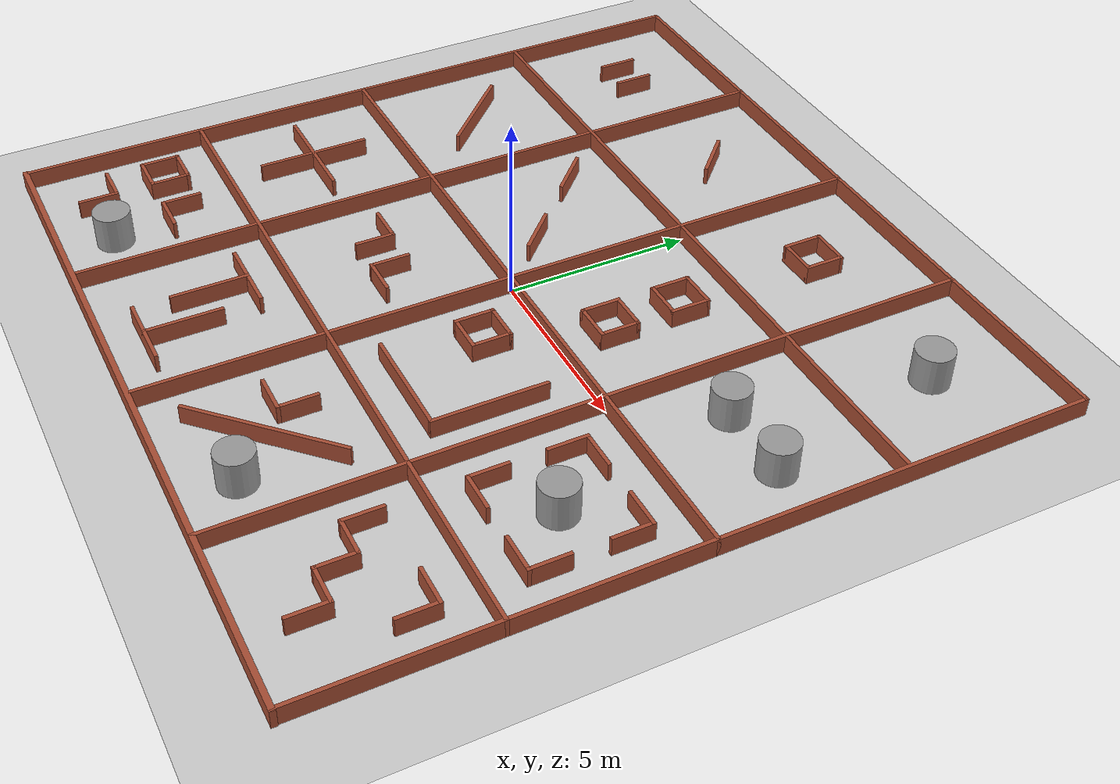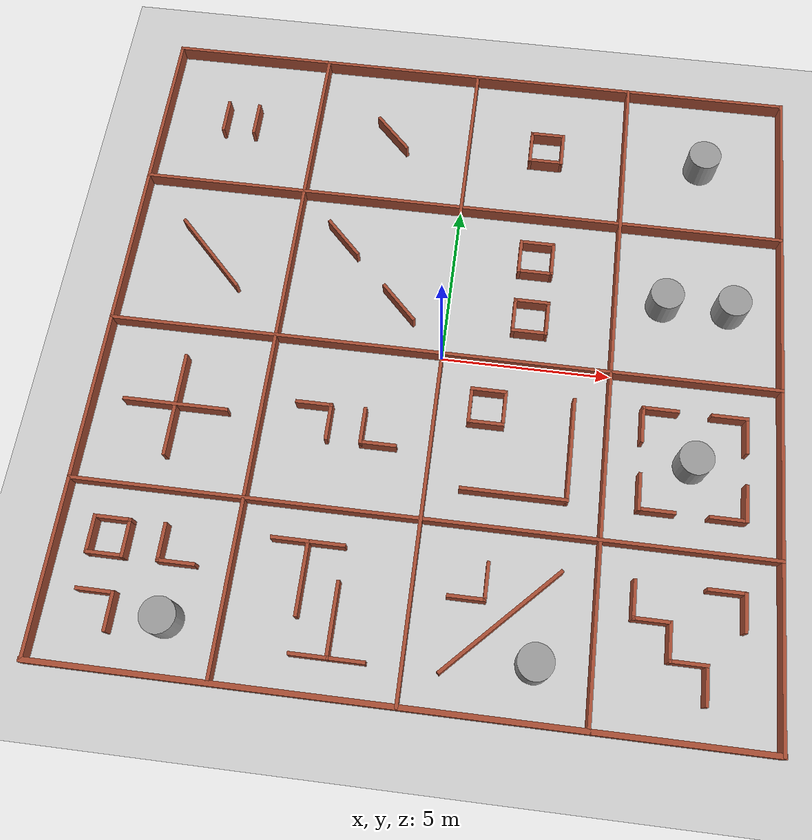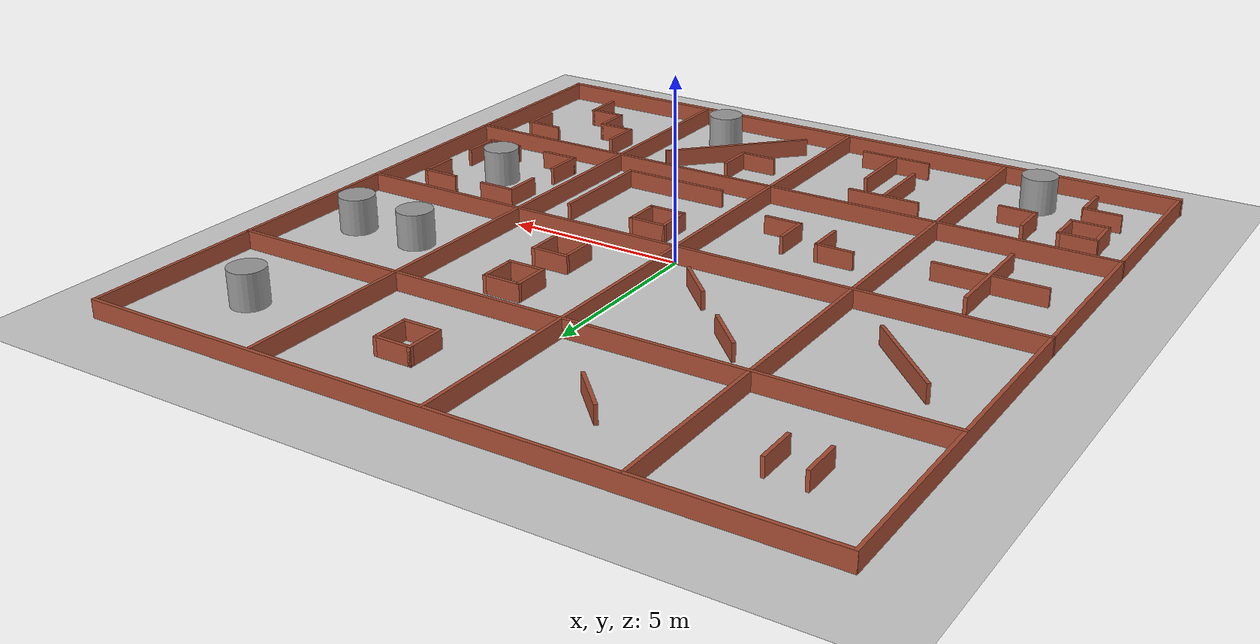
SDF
<sdf version="1.7">
 <world name="default">
  <light name="sun" type="directional">
   <pose>0 0 10 0 -0 0</pose>
   <diffuse>0.8 0.8 0.8 1</diffuse>
   <specular>0.2 0.2 0.2 1</specular>
   <attenuation>
    <range>1000</range>
    <constant>0.9</constant>
    <linear>0.01</linear>
    <quadratic>0.001</quadratic>
   </attenuation>
   <direction>-0.5 0.1 -0.9</direction>
   <spot><inner_angle>0</inner_angle><outer_angle>0</outer_angle><falloff>0</falloff></spot>
  </light>
  <model name="ground_plane">
   <static>1</static>
   <link name="link">
    <collision name="collision">
     <geometry><plane><normal>0 0 1</normal><size>100 100</size></plane></geometry>
     <surface>
      <contact><collide_bitmask>65535</collide_bitmask></contact>
      <friction><ode><mu>100</mu><mu2>50</mu2></ode></friction>
     </surface>
    </collision>
    <visual name="visual">
     <cast_shadows>0</cast_shadows>
     <geometry><plane><normal>0 0 1</normal><size>100 100</size></plane></geometry>
     <material>
      <script><uri>file://media/materials/scripts/gazebo.material</uri><name>Gazebo/Grey</name></script>
     </material>
    </visual>
   </link>
  </model>
  <gravity>0 0 -9.8</gravity>
  <magnetic_field>6e-06 2.3e-05 -4.2e-05</magnetic_field>
  <atmosphere type="adiabatic"/>
  <physics type="ode">
   <max_step_size>0.001</max_step_size>
   <real_time_factor>1</real_time_factor>
   <real_time_update_rate>1000</real_time_update_rate>
  </physics>
  <scene><ambient>0.4 0.4 0.4 1</ambient><background>0.7 0.7 0.7 1</background><shadows>1</shadows></scene>
  <spherical_coordinates>
   <surface_model>EARTH_WGS84</surface_model>
   <latitude_deg>0</latitude_deg>
   <longitude_deg>0</longitude_deg>
   <elevation>0</elevation>
   <heading_deg>0</heading_deg>
  </spherical_coordinates>
  <model name="tb3_cplx_16">
   <pose>0 -0.012499 0 0 -0 0</pose>
   <link name="Wall_0">
    <collision name="Wall_0_Collision">
     <geometry><box><size>20.1 0.1 0.5</size></box></geometry>
     <pose>0 0 0.25 0 -0 0</pose>
    </collision>
    <visual name="Wall_0_Visual">
     <pose>0 0 0.25 0 -0 0</pose>
     <geometry><box><size>20.1 0.1 0.5</size></box></geometry>
     <material>
      <script><uri>file://media/materials/scripts/gazebo.material</uri><name>Gazebo/Bricks</name></script>
      <ambient>0.760784 0.662745 0.627451 1</ambient>
     </material>
     <meta><layer>0</layer></meta>
    </visual>
    <pose>0 10.0125 0 0 -0 0</pose>
   </link>
   <link name="Wall_1">
    <collision name="Wall_1_Collision">
     <geometry><box><size>20.1 0.1 0.5</size></box></geometry>
     <pose>0 0 0.25 0 -0 0</pose>
    </collision>
    <visual name="Wall_1_Visual">
     <pose>0 0 0.25 0 -0 0</pose>
     <geometry><box><size>20.1 0.1 0.5</size></box></geometry>
     <material>
      <script><uri>file://media/materials/scripts/gazebo.material</uri><name>Gazebo/Bricks</name></script>
      <ambient>0.760784 0.662745 0.627451 1</ambient>
     </material>
     <meta><layer>0</layer></meta>
    </visual>
    <pose>10 0.012499 0 0 -0 -1.5708</pose>
   </link>
   <link name="Wall_100">
    <collision name="Wall_100_Collision">
     <geometry><box><size>1.1 0.1 0.5</size></box></geometry>
     <pose>0 0 0.25 0 -0 0</pose>
    </collision>
    <visual name="Wall_100_Visual">
     <pose>0 0 0.25 0 -0 0</pose>
     <geometry><box><size>1.1 0.1 0.5</size></box></geometry>
     <material>
      <script><uri>file://media/materials/scripts/gazebo.material</uri><name>Gazebo/Bricks</name></script>
      <ambient>0.760784 0.662745 0.627451 1</ambient>
     </material>
     <meta><layer>0</layer></meta>
    </visual>
    <pose>8.5 -0.987501 0 0 -0 0</pose>
   </link>
   <link name="Wall_101">
    <collision name="Wall_101_Collision">
     <geometry><box><size>1.1 0.1 0.5</size></box></geometry>
     <pose>0 0 0.25 0 -0 0</pose>
    </collision>
    <visual name="Wall_101_Visual">
     <pose>0 0 0.25 0 -0 0</pose>
     <geometry><box><size>1.1 0.1 0.5</size></box></geometry>
     <material>
      <script><uri>file://media/materials/scripts/gazebo.material</uri><name>Gazebo/Bricks</name></script>
      <ambient>0.760784 0.662745 0.627451 1</ambient>
     </material>
     <meta><layer>0</layer></meta>
    </visual>
    <pose>9 -1.4875 0 0 -0 -1.5708</pose>
   </link>
   <link name="Wall_103">
    <collision name="Wall_103_Collision">
     <geometry><box><size>1.1 0.1 0.5</size></box></geometry>
     <pose>0 0 0.25 0 -0 0</pose>
    </collision>
    <visual name="Wall_103_Visual">
     <pose>0 0 0.25 0 -0 0</pose>
     <geometry><box><size>1.1 0.1 0.5</size></box></geometry>
     <material>
      <script><uri>file://media/materials/scripts/gazebo.material</uri><name>Gazebo/Bricks</name></script>
      <ambient>0.760784 0.662745 0.627451 1</ambient>
     </material>
     <meta><layer>0</layer></meta>
    </visual>
    <pose>6 -3.4875 0 0 -0 -1.5708</pose>
   </link>
   <link name="Wall_104">
    <collision name="Wall_104_Collision">
     <geometry><box><size>1.1 0.1 0.5</size></box></geometry>
     <pose>0 0 0.25 0 -0 0</pose>
    </collision>
    <visual name="Wall_104_Visual">
     <pose>0 0 0.25 0 -0 0</pose>
     <geometry><box><size>1.1 0.1 0.5</size></box></geometry>
     <material>
      <script><uri>file://media/materials/scripts/gazebo.material</uri><name>Gazebo/Bricks</name></script>
      <ambient>0.760784 0.662745 0.627451 1</ambient>
     </material>
     <meta><layer>0</layer></meta>
    </visual>
    <pose>6.5 -3.9875 0 0 -0 0</pose>
   </link>
   <link name="Wall_106">
    <collision name="Wall_106_Collision">
     <geometry><box><size>1.1 0.1 0.5</size></box></geometry>
     <pose>0 0 0.25 0 -0 0</pose>
    </collision>
    <visual name="Wall_106_Visual">
     <pose>0 0 0.25 0 -0 0</pose>
     <geometry><box><size>1.1 0.1 0.5</size></box></geometry>
     <material>
      <script><uri>file://media/materials/scripts/gazebo.material</uri><name>Gazebo/Bricks</name></script>
      <ambient>0.760784 0.662745 0.627451 1</ambient>
     </material>
     <meta><layer>0</layer></meta>
    </visual>
    <pose>9 -3.4875 0 0 -0 -1.5708</pose>
   </link>
   <link name="Wall_107">
    <collision name="Wall_107_Collision">
     <geometry><box><size>1.1 0.1 0.5</size></box></geometry>
     <pose>0 0 0.25 0 -0 0</pose>
    </collision>
    <visual name="Wall_107_Visual">
     <pose>0 0 0.25 0 -0 0</pose>
     <geometry><box><size>1.1 0.1 0.5</size></box></geometry>
     <material>
      <script><uri>file://media/materials/scripts/gazebo.material</uri><name>Gazebo/Bricks</name></script>
      <ambient>0.760784 0.662745 0.627451 1</ambient>
     </material>
     <meta><layer>0</layer></meta>
    </visual>
    <pose>8.5 -3.9875 0 0 -0 3.14159</pose>
   </link>
   <link name="Wall_11">
    <collision name="Wall_11_Collision">
     <geometry><box><size>20.1 0.1 0.5</size></box></geometry>
     <pose>0 0 0.25 0 -0 0</pose>
    </collision>
    <visual name="Wall_11_Visual">
     <pose>0 0 0.25 0 -0 0</pose>
     <geometry><box><size>20.1 0.1 0.5</size></box></geometry>
     <material>
      <script><uri>file://media/materials/scripts/gazebo.material</uri><name>Gazebo/Bricks</name></script>
      <ambient>0.760784 0.662745 0.627451 1</ambient>
     </material>
     <meta><layer>0</layer></meta>
    </visual>
    <pose>0 0.012499 0 0 -0 -1.5708</pose>
   </link>
   <link name="Wall_13">
    <collision name="Wall_13_Collision">
     <geometry><box><size>20.1 0.1 0.5</size></box></geometry>
     <pose>0 0 0.25 0 -0 0</pose>
    </collision>
    <visual name="Wall_13_Visual">
     <pose>0 0 0.25 0 -0 0</pose>
     <geometry><box><size>20.1 0.1 0.5</size></box></geometry>
     <material>
      <script><uri>file://media/materials/scripts/gazebo.material</uri><name>Gazebo/Bricks</name></script>
      <ambient>0.760784 0.662745 0.627451 1</ambient>
     </material>
     <meta><layer>0</layer></meta>
    </visual>
    <pose>5 0.012499 0 0 -0 -1.5708</pose>
   </link>
   <link name="Wall_15">
    <collision name="Wall_15_Collision">
     <geometry><box><size>20.1 0.1 0.5</size></box></geometry>
     <pose>0 0 0.25 0 -0 0</pose>
    </collision>
    <visual name="Wall_15_Visual">
     <pose>0 0 0.25 0 -0 0</pose>
     <geometry><box><size>20.1 0.1 0.5</size></box></geometry>
     <material>
      <script><uri>file://media/materials/scripts/gazebo.material</uri><name>Gazebo/Bricks</name></script>
      <ambient>0.760784 0.662745 0.627451 1</ambient>
     </material>
     <meta><layer>0</layer></meta>
    </visual>
    <pose>0 0.012499 0 0 -0 0</pose>
   </link>
   <link name="Wall_17">
    <collision name="Wall_17_Collision">
     <geometry><box><size>1.51421 0.1 0.5</size></box></geometry>
     <pose>0 0 0.25 0 -0 0</pose>
    </collision>
    <visual name="Wall_17_Visual">
     <pose>0 0 0.25 0 -0 0</pose>
     <geometry><box><size>1.51421 0.1 0.5</size></box></geometry>
     <material>
      <script><uri>file://media/materials/scripts/gazebo.material</uri><name>Gazebo/Bricks</name></script>
      <ambient>0.760784 0.662745 0.627451 1</ambient>
     </material>
     <meta><layer>0</layer></meta>
    </visual>
    <pose>-2.5 7.5125 0 0 -0 2.35619</pose>
   </link>
   <link name="Wall_19">
    <collision name="Wall_19_Collision">
     <geometry><box><size>1.1 0.1 0.5</size></box></geometry>
     <pose>0 0 0.25 0 -0 0</pose>
    </collision>
    <visual name="Wall_19_Visual">
     <pose>0 0 0.25 0 -0 0</pose>
     <geometry><box><size>1.1 0.1 0.5</size></box></geometry>
     <material>
      <script><uri>file://media/materials/scripts/gazebo.material</uri><name>Gazebo/Bricks</name></script>
      <ambient>0.760784 0.662745 0.627451 1</ambient>
     </material>
     <meta><layer>0</layer></meta>
    </visual>
    <pose>2 7.5125 0 0 -0 -1.5708</pose>
   </link>
   <link name="Wall_2">
    <collision name="Wall_2_Collision">
     <geometry><box><size>20.15 0.15 0.5</size></box></geometry>
     <pose>0 0 0.25 0 -0 0</pose>
    </collision>
    <visual name="Wall_2_Visual">
     <pose>0 0 0.25 0 -0 0</pose>
     <geometry><box><size>20.15 0.15 0.5</size></box></geometry>
     <material>
      <script><uri>file://media/materials/scripts/gazebo.material</uri><name>Gazebo/Bricks</name></script>
      <ambient>0.760784 0.662745 0.627451 1</ambient>
     </material>
     <meta><layer>0</layer></meta>
    </visual>
    <pose>0 -9.9875 0 0 -0 3.14159</pose>
   </link>
   <link name="Wall_20">
    <collision name="Wall_20_Collision">
     <geometry><box><size>1.1 0.1 0.5</size></box></geometry>
     <pose>0 0 0.25 0 -0 0</pose>
    </collision>
    <visual name="Wall_20_Visual">
     <pose>0 0 0.25 0 -0 0</pose>
     <geometry><box><size>1.1 0.1 0.5</size></box></geometry>
     <material>
      <script><uri>file://media/materials/scripts/gazebo.material</uri><name>Gazebo/Bricks</name></script>
      <ambient>0.760784 0.662745 0.627451 1</ambient>
     </material>
     <meta><layer>0</layer></meta>
    </visual>
    <pose>2.5 7.0125 0 0 -0 0</pose>
   </link>
   <link name="Wall_21">
    <collision name="Wall_21_Collision">
     <geometry><box><size>1.1 0.1 0.5</size></box></geometry>
     <pose>0 0 0.25 0 -0 0</pose>
    </collision>
    <visual name="Wall_21_Visual">
     <pose>0 0 0.25 0 -0 0</pose>
     <geometry><box><size>1.1 0.1 0.5</size></box></geometry>
     <material>
      <script><uri>file://media/materials/scripts/gazebo.material</uri><name>Gazebo/Bricks</name></script>
      <ambient>0.760784 0.662745 0.627451 1</ambient>
     </material>
     <meta><layer>0</layer></meta>
    </visual>
    <pose>3 7.5125 0 0 -0 1.5708</pose>
   </link>
   <link name="Wall_22">
    <collision name="Wall_22_Collision">
     <geometry><box><size>1.1 0.1 0.5</size></box></geometry>
     <pose>0 0 0.25 0 -0 0</pose>
    </collision>
    <visual name="Wall_22_Visual">
     <pose>0 0 0.25 0 -0 0</pose>
     <geometry><box><size>1.1 0.1 0.5</size></box></geometry>
     <material>
      <script><uri>file://media/materials/scripts/gazebo.material</uri><name>Gazebo/Bricks</name></script>
      <ambient>0.760784 0.662745 0.627451 1</ambient>
     </material>
     <meta><layer>0</layer></meta>
    </visual>
    <pose>2.5 8.0125 0 0 -0 3.14159</pose>
   </link>
   <link name="Wall_24">
    <collision name="Wall_24_Collision">
     <geometry><box><size>2.92843 0.1 0.5</size></box></geometry>
     <pose>0 0 0.25 0 -0 0</pose>
    </collision>
    <visual name="Wall_24_Visual">
     <pose>0 0 0.25 0 -0 0</pose>
     <geometry><box><size>2.92843 0.1 0.5</size></box></geometry>
     <material>
      <script><uri>file://media/materials/scripts/gazebo.material</uri><name>Gazebo/Bricks</name></script>
      <ambient>0.760784 0.662745 0.627451 1</ambient>
     </material>
     <meta><layer>0</layer></meta>
    </visual>
    <pose>-7.5 2.5125 0 0 -0 -0.785398</pose>
   </link>
   <link name="Wall_26">
    <collision name="Wall_26_Collision">
     <geometry><box><size>1.51421 0.1 0.5</size></box></geometry>
     <pose>0 0 0.25 0 -0 0</pose>
    </collision>
    <visual name="Wall_26_Visual">
     <pose>0 0 0.25 0 -0 0</pose>
     <geometry><box><size>1.51421 0.1 0.5</size></box></geometry>
     <material>
      <script><uri>file://media/materials/scripts/gazebo.material</uri><name>Gazebo/Bricks</name></script>
      <ambient>0.760784 0.662745 0.627451 1</ambient>
     </material>
     <meta><layer>0</layer></meta>
    </visual>
    <pose>-3.5 3.5125 0 0 -0 -0.785398</pose>
   </link>
   <link name="Wall_28">
    <collision name="Wall_28_Collision">
     <geometry><box><size>1.51421 0.1 0.5</size></box></geometry>
     <pose>0 0 0.25 0 -0 0</pose>
    </collision>
    <visual name="Wall_28_Visual">
     <pose>0 0 0.25 0 -0 0</pose>
     <geometry><box><size>1.51421 0.1 0.5</size></box></geometry>
     <material>
      <script><uri>file://media/materials/scripts/gazebo.material</uri><name>Gazebo/Bricks</name></script>
      <ambient>0.760784 0.662745 0.627451 1</ambient>
     </material>
     <meta><layer>0</layer></meta>
    </visual>
    <pose>-1.5 1.5125 0 0 -0 -0.785398</pose>
   </link>
   <link name="Wall_3">
    <collision name="Wall_3_Collision">
     <geometry><box><size>20.1 0.1 0.5</size></box></geometry>
     <pose>0 0 0.25 0 -0 0</pose>
    </collision>
    <visual name="Wall_3_Visual">
     <pose>0 0 0.25 0 -0 0</pose>
     <geometry><box><size>20.1 0.1 0.5</size></box></geometry>
     <material>
      <script><uri>file://media/materials/scripts/gazebo.material</uri><name>Gazebo/Bricks</name></script>
      <ambient>0.760784 0.662745 0.627451 1</ambient>
     </material>
     <meta><layer>0</layer></meta>
    </visual>
    <pose>-10 0.012499 0 0 -0 1.5708</pose>
   </link>
   <link name="Wall_30">
    <collision name="Wall_30_Collision">
     <geometry><box><size>1.1 0.1 0.5</size></box></geometry>
     <pose>0 0 0.25 0 -0 0</pose>
    </collision>
    <visual name="Wall_30_Visual">
     <pose>0 0 0.25 0 -0 0</pose>
     <geometry><box><size>1.1 0.1 0.5</size></box></geometry>
     <material>
      <script><uri>file://media/materials/scripts/gazebo.material</uri><name>Gazebo/Bricks</name></script>
      <ambient>0.760784 0.662745 0.627451 1</ambient>
     </material>
     <meta><layer>0</layer></meta>
    </visual>
    <pose>2 3.5125 0 0 -0 -1.5708</pose>
   </link>
   <link name="Wall_31">
    <collision name="Wall_31_Collision">
     <geometry><box><size>1.1 0.1 0.5</size></box></geometry>
     <pose>0 0 0.25 0 -0 0</pose>
    </collision>
    <visual name="Wall_31_Visual">
     <pose>0 0 0.25 0 -0 0</pose>
     <geometry><box><size>1.1 0.1 0.5</size></box></geometry>
     <material>
      <script><uri>file://media/materials/scripts/gazebo.material</uri><name>Gazebo/Bricks</name></script>
      <ambient>0.760784 0.662745 0.627451 1</ambient>
     </material>
     <meta><layer>0</layer></meta>
    </visual>
    <pose>2.5 3.0125 0 0 -0 0</pose>
   </link>
   <link name="Wall_32">
    <collision name="Wall_32_Collision">
     <geometry><box><size>1.1 0.1 0.5</size></box></geometry>
     <pose>0 0 0.25 0 -0 0</pose>
    </collision>
    <visual name="Wall_32_Visual">
     <pose>0 0 0.25 0 -0 0</pose>
     <geometry><box><size>1.1 0.1 0.5</size></box></geometry>
     <material>
      <script><uri>file://media/materials/scripts/gazebo.material</uri><name>Gazebo/Bricks</name></script>
      <ambient>0.760784 0.662745 0.627451 1</ambient>
     </material>
     <meta><layer>0</layer></meta>
    </visual>
    <pose>3 3.5125 0 0 -0 1.5708</pose>
   </link>
   <link name="Wall_33">
    <collision name="Wall_33_Collision">
     <geometry><box><size>1.1 0.1 0.5</size></box></geometry>
     <pose>0 0 0.25 0 -0 0</pose>
    </collision>
    <visual name="Wall_33_Visual">
     <pose>0 0 0.25 0 -0 0</pose>
     <geometry><box><size>1.1 0.1 0.5</size></box></geometry>
     <material>
      <script><uri>file://media/materials/scripts/gazebo.material</uri><name>Gazebo/Bricks</name></script>
      <ambient>0.760784 0.662745 0.627451 1</ambient>
     </material>
     <meta><layer>0</layer></meta>
    </visual>
    <pose>2.5 4.0125 0 0 -0 3.14159</pose>
   </link>
   <link name="Wall_35">
    <collision name="Wall_35_Collision">
     <geometry><box><size>1.1 0.1 0.5</size></box></geometry>
     <pose>0 0 0.25 0 -0 0</pose>
    </collision>
    <visual name="Wall_35_Visual">
     <pose>0 0 0.25 0 -0 0</pose>
     <geometry><box><size>1.1 0.1 0.5</size></box></geometry>
     <material>
      <script><uri>file://media/materials/scripts/gazebo.material</uri><name>Gazebo/Bricks</name></script>
      <ambient>0.760784 0.662745 0.627451 1</ambient>
     </material>
     <meta><layer>0</layer></meta>
    </visual>
    <pose>2 1.5125 0 0 -0 -1.5708</pose>
   </link>
   <link name="Wall_36">
    <collision name="Wall_36_Collision">
     <geometry><box><size>1.1 0.1 0.5</size></box></geometry>
     <pose>0 0 0.25 0 -0 0</pose>
    </collision>
    <visual name="Wall_36_Visual">
     <pose>0 0 0.25 0 -0 0</pose>
     <geometry><box><size>1.1 0.1 0.5</size></box></geometry>
     <material>
      <script><uri>file://media/materials/scripts/gazebo.material</uri><name>Gazebo/Bricks</name></script>
      <ambient>0.760784 0.662745 0.627451 1</ambient>
     </material>
     <meta><layer>0</layer></meta>
    </visual>
    <pose>2.5 1.0125 0 0 -0 0</pose>
   </link>
   <link name="Wall_37">
    <collision name="Wall_37_Collision">
     <geometry><box><size>1.1 0.1 0.5</size></box></geometry>
     <pose>0 0 0.25 0 -0 0</pose>
    </collision>
    <visual name="Wall_37_Visual">
     <pose>0 0 0.25 0 -0 0</pose>
     <geometry><box><size>1.1 0.1 0.5</size></box></geometry>
     <material>
      <script><uri>file://media/materials/scripts/gazebo.material</uri><name>Gazebo/Bricks</name></script>
      <ambient>0.760784 0.662745 0.627451 1</ambient>
     </material>
     <meta><layer>0</layer></meta>
    </visual>
    <pose>3 1.5125 0 0 -0 1.5708</pose>
   </link>
   <link name="Wall_38">
    <collision name="Wall_38_Collision">
     <geometry><box><size>1.1 0.1 0.5</size></box></geometry>
     <pose>0 0 0.25 0 -0 0</pose>
    </collision>
    <visual name="Wall_38_Visual">
     <pose>0 0 0.25 0 -0 0</pose>
     <geometry><box><size>1.1 0.1 0.5</size></box></geometry>
     <material>
      <script><uri>file://media/materials/scripts/gazebo.material</uri><name>Gazebo/Bricks</name></script>
      <ambient>0.760784 0.662745 0.627451 1</ambient>
     </material>
     <meta><layer>0</layer></meta>
    </visual>
    <pose>2.5 2.0125 0 0 -0 3.14159</pose>
   </link>
   <link name="Wall_40">
    <collision name="Wall_40_Collision">
     <geometry><box><size>3.1 0.1 0.5</size></box></geometry>
     <pose>0 0 0.25 0 -0 0</pose>
    </collision>
    <visual name="Wall_40_Visual">
     <pose>0 0 0.25 0 -0 0</pose>
     <geometry><box><size>3.1 0.1 0.5</size></box></geometry>
     <material>
      <script><uri>file://media/materials/scripts/gazebo.material</uri><name>Gazebo/Bricks</name></script>
      <ambient>0.760784 0.662745 0.627451 1</ambient>
     </material>
     <meta><layer>0</layer></meta>
    </visual>
    <pose>-7.5 -2.4875 0 0 -0 0</pose>
   </link>
   <link name="Wall_42">
    <collision name="Wall_42_Collision">
     <geometry><box><size>3.1 0.1 0.5</size></box></geometry>
     <pose>0 0 0.25 0 -0 0</pose>
    </collision>
    <visual name="Wall_42_Visual">
     <pose>0 0 0.25 0 -0 0</pose>
     <geometry><box><size>3.1 0.1 0.5</size></box></geometry>
     <material>
      <script><uri>file://media/materials/scripts/gazebo.material</uri><name>Gazebo/Bricks</name></script>
      <ambient>0.760784 0.662745 0.627451 1</ambient>
     </material>
     <meta><layer>0</layer></meta>
    </visual>
    <pose>-7.5 -2.4875 0 0 -0 -1.5708</pose>
   </link>
   <link name="Wall_44">
    <collision name="Wall_44_Collision">
     <geometry><box><size>1.1 0.1 0.5</size></box></geometry>
     <pose>0 0 0.25 0 -0 0</pose>
    </collision>
    <visual name="Wall_44_Visual">
     <pose>0 0 0.25 0 -0 0</pose>
     <geometry><box><size>1.1 0.1 0.5</size></box></geometry>
     <material>
      <script><uri>file://media/materials/scripts/gazebo.material</uri><name>Gazebo/Bricks</name></script>
      <ambient>0.760784 0.662745 0.627451 1</ambient>
     </material>
     <meta><layer>0</layer></meta>
    </visual>
    <pose>-9 -6.4875 0 0 -0 -1.5708</pose>
   </link>
   <link name="Wall_45">
    <collision name="Wall_45_Collision">
     <geometry><box><size>1.1 0.1 0.5</size></box></geometry>
     <pose>0 0 0.25 0 -0 0</pose>
    </collision>
    <visual name="Wall_45_Visual">
     <pose>0 0 0.25 0 -0 0</pose>
     <geometry><box><size>1.1 0.1 0.5</size></box></geometry>
     <material>
      <script><uri>file://media/materials/scripts/gazebo.material</uri><name>Gazebo/Bricks</name></script>
      <ambient>0.760784 0.662745 0.627451 1</ambient>
     </material>
     <meta><layer>0</layer></meta>
    </visual>
    <pose>-8.5 -6.9875 0 0 -0 0</pose>
   </link>
   <link name="Wall_46">
    <collision name="Wall_46_Collision">
     <geometry><box><size>1.1 0.1 0.5</size></box></geometry>
     <pose>0 0 0.25 0 -0 0</pose>
    </collision>
    <visual name="Wall_46_Visual">
     <pose>0 0 0.25 0 -0 0</pose>
     <geometry><box><size>1.1 0.1 0.5</size></box></geometry>
     <material>
      <script><uri>file://media/materials/scripts/gazebo.material</uri><name>Gazebo/Bricks</name></script>
      <ambient>0.760784 0.662745 0.627451 1</ambient>
     </material>
     <meta><layer>0</layer></meta>
    </visual>
    <pose>-8 -6.4875 0 0 -0 1.5708</pose>
   </link>
   <link name="Wall_47">
    <collision name="Wall_47_Collision">
     <geometry><box><size>1.1 0.1 0.5</size></box></geometry>
     <pose>0 0 0.25 0 -0 0</pose>
    </collision>
    <visual name="Wall_47_Visual">
     <pose>0 0 0.25 0 -0 0</pose>
     <geometry><box><size>1.1 0.1 0.5</size></box></geometry>
     <material>
      <script><uri>file://media/materials/scripts/gazebo.material</uri><name>Gazebo/Bricks</name></script>
      <ambient>0.760784 0.662745 0.627451 1</ambient>
     </material>
     <meta><layer>0</layer></meta>
    </visual>
    <pose>-8.5 -5.9875 0 0 -0 3.14159</pose>
   </link>
   <link name="Wall_49">
    <collision name="Wall_49_Collision">
     <geometry><box><size>1.1 0.1 0.5</size></box></geometry>
     <pose>0 0 0.25 0 -0 0</pose>
    </collision>
    <visual name="Wall_49_Visual">
     <pose>0 0 0.25 0 -0 0</pose>
     <geometry><box><size>1.1 0.1 0.5</size></box></geometry>
     <material>
      <script><uri>file://media/materials/scripts/gazebo.material</uri><name>Gazebo/Bricks</name></script>
      <ambient>0.760784 0.662745 0.627451 1</ambient>
     </material>
     <meta><layer>0</layer></meta>
    </visual>
    <pose>-7 -6.4875 0 0 -0 -1.5708</pose>
   </link>
   <link name="Wall_5">
    <collision name="Wall_5_Collision">
     <geometry><box><size>20.1 0.1 0.5</size></box></geometry>
     <pose>0 0 0.25 0 -0 0</pose>
    </collision>
    <visual name="Wall_5_Visual">
     <pose>0 0 0.25 0 -0 0</pose>
     <geometry><box><size>20.1 0.1 0.5</size></box></geometry>
     <material>
      <script><uri>file://media/materials/scripts/gazebo.material</uri><name>Gazebo/Bricks</name></script>
      <ambient>0.760784 0.662745 0.627451 1</ambient>
     </material>
     <meta><layer>0</layer></meta>
    </visual>
    <pose>0 5.0125 0 0 -0 0</pose>
   </link>
   <link name="Wall_50">
    <collision name="Wall_50_Collision">
     <geometry><box><size>1.1 0.1 0.5</size></box></geometry>
     <pose>0 0 0.25 0 -0 0</pose>
    </collision>
    <visual name="Wall_50_Visual">
     <pose>0 0 0.25 0 -0 0</pose>
     <geometry><box><size>1.1 0.1 0.5</size></box></geometry>
     <material>
      <script><uri>file://media/materials/scripts/gazebo.material</uri><name>Gazebo/Bricks</name></script>
      <ambient>0.760784 0.662745 0.627451 1</ambient>
     </material>
     <meta><layer>0</layer></meta>
    </visual>
    <pose>-6.5 -6.9875 0 0 -0 0</pose>
   </link>
   <link name="Wall_52">
    <collision name="Wall_52_Collision">
     <geometry><box><size>1.1 0.1 0.5</size></box></geometry>
     <pose>0 0 0.25 0 -0 0</pose>
    </collision>
    <visual name="Wall_52_Visual">
     <pose>0 0 0.25 0 -0 0</pose>
     <geometry><box><size>1.1 0.1 0.5</size></box></geometry>
     <material>
      <script><uri>file://media/materials/scripts/gazebo.material</uri><name>Gazebo/Bricks</name></script>
      <ambient>0.760784 0.662745 0.627451 1</ambient>
     </material>
     <meta><layer>0</layer></meta>
    </visual>
    <pose>-8.5 -7.9875 0 0 -0 0</pose>
   </link>
   <link name="Wall_53">
    <collision name="Wall_53_Collision">
     <geometry><box><size>1.1 0.1 0.5</size></box></geometry>
     <pose>0 0 0.25 0 -0 0</pose>
    </collision>
    <visual name="Wall_53_Visual">
     <pose>0 0 0.25 0 -0 0</pose>
     <geometry><box><size>1.1 0.1 0.5</size></box></geometry>
     <material>
      <script><uri>file://media/materials/scripts/gazebo.material</uri><name>Gazebo/Bricks</name></script>
      <ambient>0.760784 0.662745 0.627451 1</ambient>
     </material>
     <meta><layer>0</layer></meta>
    </visual>
    <pose>-8 -8.4875 0 0 -0 -1.5708</pose>
   </link>
   <link name="Wall_55">
    <collision name="Wall_55_Collision">
     <geometry><box><size>4.34264 0.1 0.5</size></box></geometry>
     <pose>0 0 0.25 0 -0 0</pose>
    </collision>
    <visual name="Wall_55_Visual">
     <pose>0 0 0.25 0 -0 0</pose>
     <geometry><box><size>4.34264 0.1 0.5</size></box></geometry>
     <material>
      <script><uri>file://media/materials/scripts/gazebo.material</uri><name>Gazebo/Bricks</name></script>
      <ambient>0.760784 0.662745 0.627451 1</ambient>
     </material>
     <meta><layer>0</layer></meta>
    </visual>
    <pose>2.5 -7.4875 0 0 -0 -2.35619</pose>
   </link>
   <link name="Wall_57">
    <collision name="Wall_57_Collision">
     <geometry><box><size>1.1 0.1 0.5</size></box></geometry>
     <pose>0 0 0.25 0 -0 0</pose>
    </collision>
    <visual name="Wall_57_Visual">
     <pose>0 0 0.25 0 -0 0</pose>
     <geometry><box><size>1.1 0.1 0.5</size></box></geometry>
     <material>
      <script><uri>file://media/materials/scripts/gazebo.material</uri><name>Gazebo/Bricks</name></script>
      <ambient>0.760784 0.662745 0.627451 1</ambient>
     </material>
     <meta><layer>0</layer></meta>
    </visual>
    <pose>6 -6.4875 0 0 -0 -1.5708</pose>
   </link>
   <link name="Wall_58">
    <collision name="Wall_58_Collision">
     <geometry><box><size>1.1 0.1 0.5</size></box></geometry>
     <pose>0 0 0.25 0 -0 0</pose>
    </collision>
    <visual name="Wall_58_Visual">
     <pose>0 0 0.25 0 -0 0</pose>
     <geometry><box><size>1.1 0.1 0.5</size></box></geometry>
     <material>
      <script><uri>file://media/materials/scripts/gazebo.material</uri><name>Gazebo/Bricks</name></script>
      <ambient>0.760784 0.662745 0.627451 1</ambient>
     </material>
     <meta><layer>0</layer></meta>
    </visual>
    <pose>6.5 -6.9875 0 0 -0 0</pose>
   </link>
   <link name="Wall_59">
    <collision name="Wall_59_Collision">
     <geometry><box><size>1.1 0.1 0.5</size></box></geometry>
     <pose>0 0 0.25 0 -0 0</pose>
    </collision>
    <visual name="Wall_59_Visual">
     <pose>0 0 0.25 0 -0 0</pose>
     <geometry><box><size>1.1 0.1 0.5</size></box></geometry>
     <material>
      <script><uri>file://media/materials/scripts/gazebo.material</uri><name>Gazebo/Bricks</name></script>
      <ambient>0.760784 0.662745 0.627451 1</ambient>
     </material>
     <meta><layer>0</layer></meta>
    </visual>
    <pose>7 -7.4875 0 0 -0 -1.5708</pose>
   </link>
   <link name="Wall_60">
    <collision name="Wall_60_Collision">
     <geometry><box><size>1.1 0.1 0.5</size></box></geometry>
     <pose>0 0 0.25 0 -0 0</pose>
    </collision>
    <visual name="Wall_60_Visual">
     <pose>0 0 0.25 0 -0 0</pose>
     <geometry><box><size>1.1 0.1 0.5</size></box></geometry>
     <material>
      <script><uri>file://media/materials/scripts/gazebo.material</uri><name>Gazebo/Bricks</name></script>
      <ambient>0.760784 0.662745 0.627451 1</ambient>
     </material>
     <meta><layer>0</layer></meta>
    </visual>
    <pose>7.5 -7.9875 0 0 -0 0</pose>
   </link>
   <link name="Wall_61">
    <collision name="Wall_61_Collision">
     <geometry><box><size>1.1 0.1 0.5</size></box></geometry>
     <pose>0 0 0.25 0 -0 0</pose>
    </collision>
    <visual name="Wall_61_Visual">
     <pose>0 0 0.25 0 -0 0</pose>
     <geometry><box><size>1.1 0.1 0.5</size></box></geometry>
     <material>
      <script><uri>file://media/materials/scripts/gazebo.material</uri><name>Gazebo/Bricks</name></script>
      <ambient>0.760784 0.662745 0.627451 1</ambient>
     </material>
     <meta><layer>0</layer></meta>
    </visual>
    <pose>8 -8.4875 0 0 -0 -1.5708</pose>
   </link>
   <link name="Wall_63">
    <collision name="Wall_63_Collision">
     <geometry><box><size>1.1 0.1 0.5</size></box></geometry>
     <pose>0 0 0.25 0 -0 0</pose>
    </collision>
    <visual name="Wall_63_Visual">
     <pose>0 0 0.25 0 -0 0</pose>
     <geometry><box><size>1.1 0.1 0.5</size></box></geometry>
     <material>
      <script><uri>file://media/materials/scripts/gazebo.material</uri><name>Gazebo/Bricks</name></script>
      <ambient>0.760784 0.662745 0.627451 1</ambient>
     </material>
     <meta><layer>0</layer></meta>
    </visual>
    <pose>8.5 -5.9875 0 0 -0 0</pose>
   </link>
   <link name="Wall_64">
    <collision name="Wall_64_Collision">
     <geometry><box><size>1.1 0.1 0.5</size></box></geometry>
     <pose>0 0 0.25 0 -0 0</pose>
    </collision>
    <visual name="Wall_64_Visual">
     <pose>0 0 0.25 0 -0 0</pose>
     <geometry><box><size>1.1 0.1 0.5</size></box></geometry>
     <material>
      <script><uri>file://media/materials/scripts/gazebo.material</uri><name>Gazebo/Bricks</name></script>
      <ambient>0.760784 0.662745 0.627451 1</ambient>
     </material>
     <meta><layer>0</layer></meta>
    </visual>
    <pose>9 -6.4875 0 0 -0 -1.5708</pose>
   </link>
   <link name="Wall_66">
    <collision name="Wall_66_Collision">
     <geometry><box><size>2.1 0.1 0.5</size></box></geometry>
     <pose>0 0 0.25 0 -0 0</pose>
    </collision>
    <visual name="Wall_66_Visual">
     <pose>0 0 0.25 0 -0 0</pose>
     <geometry><box><size>2.1 0.1 0.5</size></box></geometry>
     <material>
      <script><uri>file://media/materials/scripts/gazebo.material</uri><name>Gazebo/Bricks</name></script>
      <ambient>0.760784 0.662745 0.627451 1</ambient>
     </material>
     <meta><layer>0</layer></meta>
    </visual>
    <pose>-3 -5.9875 0 0 -0 0</pose>
   </link>
   <link name="Wall_68">
    <collision name="Wall_68_Collision">
     <geometry><box><size>2.1 0.1 0.5</size></box></geometry>
     <pose>0 0 0.25 0 -0 0</pose>
    </collision>
    <visual name="Wall_68_Visual">
     <pose>0 0 0.25 0 -0 0</pose>
     <geometry><box><size>2.1 0.1 0.5</size></box></geometry>
     <material>
      <script><uri>file://media/materials/scripts/gazebo.material</uri><name>Gazebo/Bricks</name></script>
      <ambient>0.760784 0.662745 0.627451 1</ambient>
     </material>
     <meta><layer>0</layer></meta>
    </visual>
    <pose>-3 -6.9875 0 0 -0 -1.5708</pose>
   </link>
   <link name="Wall_7">
    <collision name="Wall_7_Collision">
     <geometry><box><size>20.1 0.1 0.5</size></box></geometry>
     <pose>0 0 0.25 0 -0 0</pose>
    </collision>
    <visual name="Wall_7_Visual">
     <pose>0 0 0.25 0 -0 0</pose>
     <geometry><box><size>20.1 0.1 0.5</size></box></geometry>
     <material>
      <script><uri>file://media/materials/scripts/gazebo.material</uri><name>Gazebo/Bricks</name></script>
      <ambient>0.760784 0.662745 0.627451 1</ambient>
     </material>
     <meta><layer>0</layer></meta>
    </visual>
    <pose>0 -4.9875 0 0 -0 0</pose>
   </link>
   <link name="Wall_70">
    <collision name="Wall_70_Collision">
     <geometry><box><size>2.1 0.1 0.5</size></box></geometry>
     <pose>0 0 0.25 0 -0 0</pose>
    </collision>
    <visual name="Wall_70_Visual">
     <pose>0 0 0.25 0 -0 0</pose>
     <geometry><box><size>2.1 0.1 0.5</size></box></geometry>
     <material>
      <script><uri>file://media/materials/scripts/gazebo.material</uri><name>Gazebo/Bricks</name></script>
      <ambient>0.760784 0.662745 0.627451 1</ambient>
     </material>
     <meta><layer>0</layer></meta>
    </visual>
    <pose>-2 -7.9875 0 0 -0 -1.5708</pose>
   </link>
   <link name="Wall_72">
    <collision name="Wall_72_Collision">
     <geometry><box><size>2.1 0.1 0.5</size></box></geometry>
     <pose>0 0 0.25 0 -0 0</pose>
    </collision>
    <visual name="Wall_72_Visual">
     <pose>0 0 0.25 0 -0 0</pose>
     <geometry><box><size>2.1 0.1 0.5</size></box></geometry>
     <material>
      <script><uri>file://media/materials/scripts/gazebo.material</uri><name>Gazebo/Bricks</name></script>
      <ambient>0.760784 0.662745 0.627451 1</ambient>
     </material>
     <meta><layer>0</layer></meta>
    </visual>
    <pose>-2 -8.9875 0 0 -0 0</pose>
   </link>
   <link name="Wall_74">
    <collision name="Wall_74_Collision">
     <geometry><box><size>1.1 0.1 0.5</size></box></geometry>
     <pose>0 0 0.25 0 -0 0</pose>
    </collision>
    <visual name="Wall_74_Visual">
     <pose>0 0 0.25 0 -0 0</pose>
     <geometry><box><size>1.1 0.1 0.5</size></box></geometry>
     <material>
      <script><uri>file://media/materials/scripts/gazebo.material</uri><name>Gazebo/Bricks</name></script>
      <ambient>0.760784 0.662745 0.627451 1</ambient>
     </material>
     <meta><layer>0</layer></meta>
    </visual>
    <pose>-3.5 -1.9875 0 0 -0 0</pose>
   </link>
   <link name="Wall_75">
    <collision name="Wall_75_Collision">
     <geometry><box><size>1.1 0.1 0.5</size></box></geometry>
     <pose>0 0 0.25 0 -0 0</pose>
    </collision>
    <visual name="Wall_75_Visual">
     <pose>0 0 0.25 0 -0 0</pose>
     <geometry><box><size>1.1 0.1 0.5</size></box></geometry>
     <material>
      <script><uri>file://media/materials/scripts/gazebo.material</uri><name>Gazebo/Bricks</name></script>
      <ambient>0.760784 0.662745 0.627451 1</ambient>
     </material>
     <meta><layer>0</layer></meta>
    </visual>
    <pose>-3 -2.4875 0 0 -0 -1.5708</pose>
   </link>
   <link name="Wall_77">
    <collision name="Wall_77_Collision">
     <geometry><box><size>1.1 0.1 0.5</size></box></geometry>
     <pose>0 0 0.25 0 -0 0</pose>
    </collision>
    <visual name="Wall_77_Visual">
     <pose>0 0 0.25 0 -0 0</pose>
     <geometry><box><size>1.1 0.1 0.5</size></box></geometry>
     <material>
      <script><uri>file://media/materials/scripts/gazebo.material</uri><name>Gazebo/Bricks</name></script>
      <ambient>0.760784 0.662745 0.627451 1</ambient>
     </material>
     <meta><layer>0</layer></meta>
    </visual>
    <pose>-2 -2.4875 0 0 -0 -1.5708</pose>
   </link>
   <link name="Wall_78">
    <collision name="Wall_78_Collision">
     <geometry><box><size>1.1 0.1 0.5</size></box></geometry>
     <pose>0 0 0.25 0 -0 0</pose>
    </collision>
    <visual name="Wall_78_Visual">
     <pose>0 0 0.25 0 -0 0</pose>
     <geometry><box><size>1.1 0.1 0.5</size></box></geometry>
     <material>
      <script><uri>file://media/materials/scripts/gazebo.material</uri><name>Gazebo/Bricks</name></script>
      <ambient>0.760784 0.662745 0.627451 1</ambient>
     </material>
     <meta><layer>0</layer></meta>
    </visual>
    <pose>-1.5 -2.9875 0 0 -0 0</pose>
   </link>
   <link name="Wall_80">
    <collision name="Wall_80_Collision">
     <geometry><box><size>1.1 0.1 0.5</size></box></geometry>
     <pose>0 0 0.25 0 -0 0</pose>
    </collision>
    <visual name="Wall_80_Visual">
     <pose>0 0 0.25 0 -0 0</pose>
     <geometry><box><size>1.1 0.1 0.5</size></box></geometry>
     <material>
      <script><uri>file://media/materials/scripts/gazebo.material</uri><name>Gazebo/Bricks</name></script>
      <ambient>0.760784 0.662745 0.627451 1</ambient>
     </material>
     <meta><layer>0</layer></meta>
    </visual>
    <pose>1 -1.4875 0 0 -0 -1.5708</pose>
   </link>
   <link name="Wall_81">
    <collision name="Wall_81_Collision">
     <geometry><box><size>1.1 0.1 0.5</size></box></geometry>
     <pose>0 0 0.25 0 -0 0</pose>
    </collision>
    <visual name="Wall_81_Visual">
     <pose>0 0 0.25 0 -0 0</pose>
     <geometry><box><size>1.1 0.1 0.5</size></box></geometry>
     <material>
      <script><uri>file://media/materials/scripts/gazebo.material</uri><name>Gazebo/Bricks</name></script>
      <ambient>0.760784 0.662745 0.627451 1</ambient>
     </material>
     <meta><layer>0</layer></meta>
    </visual>
    <pose>1.5 -1.9875 0 0 -0 0</pose>
   </link>
   <link name="Wall_82">
    <collision name="Wall_82_Collision">
     <geometry><box><size>1.1 0.1 0.5</size></box></geometry>
     <pose>0 0 0.25 0 -0 0</pose>
    </collision>
    <visual name="Wall_82_Visual">
     <pose>0 0 0.25 0 -0 0</pose>
     <geometry><box><size>1.1 0.1 0.5</size></box></geometry>
     <material>
      <script><uri>file://media/materials/scripts/gazebo.material</uri><name>Gazebo/Bricks</name></script>
      <ambient>0.760784 0.662745 0.627451 1</ambient>
     </material>
     <meta><layer>0</layer></meta>
    </visual>
    <pose>2 -1.4875 0 0 -0 1.5708</pose>
   </link>
   <link name="Wall_83">
    <collision name="Wall_83_Collision">
     <geometry><box><size>1.1 0.1 0.5</size></box></geometry>
     <pose>0 0 0.25 0 -0 0</pose>
    </collision>
    <visual name="Wall_83_Visual">
     <pose>0 0 0.25 0 -0 0</pose>
     <geometry><box><size>1.1 0.1 0.5</size></box></geometry>
     <material>
      <script><uri>file://media/materials/scripts/gazebo.material</uri><name>Gazebo/Bricks</name></script>
      <ambient>0.760784 0.662745 0.627451 1</ambient>
     </material>
     <meta><layer>0</layer></meta>
    </visual>
    <pose>1.5 -0.987501 0 0 -0 3.14159</pose>
   </link>
   <link name="Wall_87">
    <collision name="Wall_87_Collision">
     <geometry><box><size>3.1 0.1 0.5</size></box></geometry>
     <pose>0 0 0.25 0 -0 0</pose>
    </collision>
    <visual name="Wall_87_Visual">
     <pose>0 0 0.25 0 -0 0</pose>
     <geometry><box><size>3.1 0.1 0.5</size></box></geometry>
     <material>
      <script><uri>file://media/materials/scripts/gazebo.material</uri><name>Gazebo/Bricks</name></script>
      <ambient>0.760784 0.662745 0.627451 1</ambient>
     </material>
     <meta><layer>0</layer></meta>
    </visual>
    <pose>2.5 -3.9875 0 0 -0 0</pose>
   </link>
   <link name="Wall_88">
    <collision name="Wall_88_Collision">
     <geometry><box><size>3.1 0.1 0.5</size></box></geometry>
     <pose>0 0 0.25 0 -0 0</pose>
    </collision>
    <visual name="Wall_88_Visual">
     <pose>0 0 0.25 0 -0 0</pose>
     <geometry><box><size>3.1 0.1 0.5</size></box></geometry>
     <material>
      <script><uri>file://media/materials/scripts/gazebo.material</uri><name>Gazebo/Bricks</name></script>
      <ambient>0.760784 0.662745 0.627451 1</ambient>
     </material>
     <meta><layer>0</layer></meta>
    </visual>
    <pose>4 -2.4875 0 0 -0 1.5708</pose>
   </link>
   <link name="Wall_9">
    <collision name="Wall_9_Collision">
     <geometry><box><size>20.1 0.1 0.5</size></box></geometry>
     <pose>0 0 0.25 0 -0 0</pose>
    </collision>
    <visual name="Wall_9_Visual">
     <pose>0 0 0.25 0 -0 0</pose>
     <geometry><box><size>20.1 0.1 0.5</size></box></geometry>
     <material>
      <script><uri>file://media/materials/scripts/gazebo.material</uri><name>Gazebo/Bricks</name></script>
      <ambient>0.760784 0.662745 0.627451 1</ambient>
     </material>
     <meta><layer>0</layer></meta>
    </visual>
    <pose>-5 0.012499 0 0 -0 -1.5708</pose>
   </link>
   <link name="Wall_90">
    <collision name="Wall_90_Collision">
     <geometry><box><size>1.1 0.1 0.5</size></box></geometry>
     <pose>0 0 0.25 0 -0 0</pose>
    </collision>
    <visual name="Wall_90_Visual">
     <pose>0 0 0.25 0 -0 0</pose>
     <geometry><box><size>1.1 0.1 0.5</size></box></geometry>
     <material>
      <script><uri>file://media/materials/scripts/gazebo.material</uri><name>Gazebo/Bricks</name></script>
      <ambient>0.760784 0.662745 0.627451 1</ambient>
     </material>
     <meta><layer>0</layer></meta>
    </visual>
    <pose>-8 7.5125 0 0 -0 -1.5708</pose>
   </link>
   <link name="Wall_92">
    <collision name="Wall_92_Collision">
     <geometry><box><size>1.1 0.1 0.5</size></box></geometry>
     <pose>0 0 0.25 0 -0 0</pose>
    </collision>
    <visual name="Wall_92_Visual">
     <pose>0 0 0.25 0 -0 0</pose>
     <geometry><box><size>1.1 0.1 0.5</size></box></geometry>
     <material>
      <script><uri>file://media/materials/scripts/gazebo.material</uri><name>Gazebo/Bricks</name></script>
      <ambient>0.760784 0.662745 0.627451 1</ambient>
     </material>
     <meta><layer>0</layer></meta>
    </visual>
    <pose>-7 7.5125 0 0 -0 -1.5708</pose>
   </link>
   <link name="Wall_94">
    <collision name="Wall_94_Collision">
     <geometry><box><size>1.1 0.1 0.5</size></box></geometry>
     <pose>0 0 0.25 0 -0 0</pose>
    </collision>
    <visual name="Wall_94_Visual">
     <pose>0 0 0.25 0 -0 0</pose>
     <geometry><box><size>1.1 0.1 0.5</size></box></geometry>
     <material>
      <script><uri>file://media/materials/scripts/gazebo.material</uri><name>Gazebo/Bricks</name></script>
      <ambient>0.760784 0.662745 0.627451 1</ambient>
     </material>
     <meta><layer>0</layer></meta>
    </visual>
    <pose>2 -6.4875 0 0 -0 -1.5708</pose>
   </link>
   <link name="Wall_95">
    <collision name="Wall_95_Collision">
     <geometry><box><size>1.1 0.1 0.5</size></box></geometry>
     <pose>0 0 0.25 0 -0 0</pose>
    </collision>
    <visual name="Wall_95_Visual">
     <pose>0 0 0.25 0 -0 0</pose>
     <geometry><box><size>1.1 0.1 0.5</size></box></geometry>
     <material>
      <script><uri>file://media/materials/scripts/gazebo.material</uri><name>Gazebo/Bricks</name></script>
      <ambient>0.760784 0.662745 0.627451 1</ambient>
     </material>
     <meta><layer>0</layer></meta>
    </visual>
    <pose>1.5 -6.9875 0 0 -0 3.14159</pose>
   </link>
   <link name="Wall_97">
    <collision name="Wall_97_Collision">
     <geometry><box><size>1.1 0.1 0.5</size></box></geometry>
     <pose>0 0 0.25 0 -0 0</pose>
    </collision>
    <visual name="Wall_97_Visual">
     <pose>0 0 0.25 0 -0 0</pose>
     <geometry><box><size>1.1 0.1 0.5</size></box></geometry>
     <material>
      <script><uri>file://media/materials/scripts/gazebo.material</uri><name>Gazebo/Bricks</name></script>
      <ambient>0.760784 0.662745 0.627451 1</ambient>
     </material>
     <meta><layer>0</layer></meta>
    </visual>
    <pose>6 -1.4875 0 0 -0 1.5708</pose>
   </link>
   <link name="Wall_98">
    <collision name="Wall_98_Collision">
     <geometry><box><size>1.1 0.1 0.5</size></box></geometry>
     <pose>0 0 0.25 0 -0 0</pose>
    </collision>
    <visual name="Wall_98_Visual">
     <pose>0 0 0.25 0 -0 0</pose>
     <geometry><box><size>1.1 0.1 0.5</size></box></geometry>
     <material>
      <script><uri>file://media/materials/scripts/gazebo.material</uri><name>Gazebo/Bricks</name></script>
      <ambient>0.760784 0.662745 0.627451 1</ambient>
     </material>
     <meta><layer>0</layer></meta>
    </visual>
    <pose>6.5 -0.987501 0 0 -0 0</pose>
   </link>
   <static>1</static>
  </model>
  <model name="unit_cylinder">
   <link name="link_1">
    <inertial>
     <mass>1</mass>
     <inertia><ixx>0.145833</ixx><ixy>0</ixy><ixz>0</ixz><iyy>0.145833</iyy><iyz>0</iyz><izz>0.125</izz></inertia>
    </inertial>
    <pose>-0.033889 0.005644 0 0 -0 0</pose>
    <visual name="visual">
     <geometry><cylinder><radius>0.5</radius><length>1</length></cylinder></geometry>
     <material>
      <lighting>1</lighting>
      <script><uri>file://media/materials/scripts/gazebo.material</uri><name>Gazebo/Grey</name></script>
      <shader type="pixel"><normal_map>__default__</normal_map></shader>
     </material>
    </visual>
    <collision name="collision">
     <geometry><cylinder><radius>0.5</radius><length>1</length></cylinder></geometry>
     <surface>
      <friction>
       <ode><mu>1</mu><mu2>1</mu2><fdir1>0 0 0</fdir1><slip1>0</slip1><slip2>0</slip2></ode>
       <torsional>
        <coefficient>1</coefficient>
        <patch_radius>0</patch_radius>
        <surface_radius>0</surface_radius>
        <use_patch_radius>1</use_patch_radius>
        <ode><slip>0</slip></ode>
       </torsional>
      </friction>
      <bounce><restitution_coefficient>0</restitution_coefficient><threshold>1e+06</threshold></bounce>
      <contact>
       <collide_without_contact>0</collide_without_contact>
       <collide_without_contact_bitmask>1</collide_without_contact_bitmask>
       <collide_bitmask>1</collide_bitmask>
       <ode>
        <soft_cfm>0</soft_cfm>
        <soft_erp>0.2</soft_erp>
        <kp>1e+13</kp>
        <kd>1</kd>
        <max_vel>0.01</max_vel>
        <min_depth>0</min_depth>
       </ode>
       <bullet>
        <split_impulse>1</split_impulse>
        <split_impulse_penetration_threshold>-0.01</split_impulse_penetration_threshold>
        <soft_cfm>0</soft_cfm>
        <soft_erp>0.2</soft_erp>
        <kp>1e+13</kp>
        <kd>1</kd>
       </bullet>
      </contact>
     </surface>
    </collision>
   </link>
   <static>0</static>
   <pose>7.5 7.5 0.499998 3e-06 2e-06 0</pose>
  </model>
  <model name="unit_cylinder_0">
   <link name="link_1">
    <inertial>
     <mass>1</mass>
     <inertia><ixx>0.145833</ixx><ixy>0</ixy><ixz>0</ixz><iyy>0.145833</iyy><iyz>0</iyz><izz>0.125</izz></inertia>
    </inertial>
    <pose>-0.033889 0.005644 0 0 -0 0</pose>
    <visual name="visual">
     <geometry><cylinder><radius>0.5</radius><length>1</length></cylinder></geometry>
     <material>
      <lighting>1</lighting>
      <script><uri>file://media/materials/scripts/gazebo.material</uri><name>Gazebo/Grey</name></script>
      <shader type="pixel"><normal_map>__default__</normal_map></shader>
     </material>
    </visual>
    <collision name="collision">
     <geometry><cylinder><radius>0.5</radius><length>1</length></cylinder></geometry>
     <surface>
      <friction>
       <ode><mu>1</mu><mu2>1</mu2><fdir1>0 0 0</fdir1><slip1>0</slip1><slip2>0</slip2></ode>
       <torsional>
        <coefficient>1</coefficient>
        <patch_radius>0</patch_radius>
        <surface_radius>0</surface_radius>
        <use_patch_radius>1</use_patch_radius>
        <ode><slip>0</slip></ode>
       </torsional>
      </friction>
      <bounce><restitution_coefficient>0</restitution_coefficient><threshold>1e+06</threshold></bounce>
      <contact>
       <collide_without_contact>0</collide_without_contact>
       <collide_without_contact_bitmask>1</collide_without_contact_bitmask>
       <collide_bitmask>1</collide_bitmask>
       <ode>
        <soft_cfm>0</soft_cfm>
        <soft_erp>0.2</soft_erp>
        <kp>1e+13</kp>
        <kd>1</kd>
        <max_vel>0.01</max_vel>
        <min_depth>0</min_depth>
       </ode>
       <bullet>
        <split_impulse>1</split_impulse>
        <split_impulse_penetration_threshold>-0.01</split_impulse_penetration_threshold>
        <soft_cfm>0</soft_cfm>
        <soft_erp>0.2</soft_erp>
        <kp>1e+13</kp>
        <kd>1</kd>
       </bullet>
      </contact>
     </surface>
    </collision>
   </link>
   <static>0</static>
   <pose>6.5 2.5 0.499992 -3e-06 -3e-06 0</pose>
  </model>
  <model name="unit_cylinder_1">
   <link name="link_1">
    <inertial>
     <mass>1</mass>
     <inertia><ixx>0.145833</ixx><ixy>0</ixy><ixz>0</ixz><iyy>0.145833</iyy><iyz>0</iyz><izz>0.125</izz></inertia>
    </inertial>
    <pose>-0.033889 0.005644 0 0 -0 0</pose>
    <visual name="visual">
     <geometry><cylinder><radius>0.5</radius><length>1</length></cylinder></geometry>
     <material>
      <lighting>1</lighting>
      <script><uri>file://media/materials/scripts/gazebo.material</uri><name>Gazebo/Grey</name></script>
      <shader type="pixel"><normal_map>__default__</normal_map></shader>
     </material>
    </visual>
    <collision name="collision">
     <geometry><cylinder><radius>0.5</radius><length>1</length></cylinder></geometry>
     <surface>
      <friction>
       <ode><mu>1</mu><mu2>1</mu2><fdir1>0 0 0</fdir1><slip1>0</slip1><slip2>0</slip2></ode>
       <torsional>
        <coefficient>1</coefficient>
        <patch_radius>0</patch_radius>
        <surface_radius>0</surface_radius>
        <use_patch_radius>1</use_patch_radius>
        <ode><slip>0</slip></ode>
       </torsional>
      </friction>
      <bounce><restitution_coefficient>0</restitution_coefficient><threshold>1e+06</threshold></bounce>
      <contact>
       <collide_without_contact>0</collide_without_contact>
       <collide_without_contact_bitmask>1</collide_without_contact_bitmask>
       <collide_bitmask>1</collide_bitmask>
       <ode>
        <soft_cfm>0</soft_cfm>
        <soft_erp>0.2</soft_erp>
        <kp>1e+13</kp>
        <kd>1</kd>
        <max_vel>0.01</max_vel>
        <min_depth>0</min_depth>
       </ode>
       <bullet>
        <split_impulse>1</split_impulse>
        <split_impulse_penetration_threshold>-0.01</split_impulse_penetration_threshold>
        <soft_cfm>0</soft_cfm>
        <soft_erp>0.2</soft_erp>
        <kp>1e+13</kp>
        <kd>1</kd>
       </bullet>
      </contact>
     </surface>
    </collision>
   </link>
   <static>0</static>
   <pose>8.5 2.5 0.499998 3e-06 3e-06 0</pose>
  </model>
  <model name="unit_cylinder_2">
   <link name="link_1">
    <inertial>
     <mass>1</mass>
     <inertia><ixx>0.145833</ixx><ixy>0</ixy><ixz>0</ixz><iyy>0.145833</iyy><iyz>0</iyz><izz>0.125</izz></inertia>
    </inertial>
    <pose>-0.033889 0.005644 0 0 -0 0</pose>
    <visual name="visual">
     <geometry><cylinder><radius>0.5</radius><length>1</length></cylinder></geometry>
     <material>
      <lighting>1</lighting>
      <script><uri>file://media/materials/scripts/gazebo.material</uri><name>Gazebo/Grey</name></script>
      <shader type="pixel"><normal_map>__default__</normal_map></shader>
     </material>
    </visual>
    <collision name="collision">
     <geometry><cylinder><radius>0.5</radius><length>1</length></cylinder></geometry>
     <surface>
      <friction>
       <ode><mu>1</mu><mu2>1</mu2><fdir1>0 0 0</fdir1><slip1>0</slip1><slip2>0</slip2></ode>
       <torsional>
        <coefficient>1</coefficient>
        <patch_radius>0</patch_radius>
        <surface_radius>0</surface_radius>
        <use_patch_radius>1</use_patch_radius>
        <ode><slip>0</slip></ode>
       </torsional>
      </friction>
      <bounce><restitution_coefficient>0</restitution_coefficient><threshold>1e+06</threshold></bounce>
      <contact>
       <collide_without_contact>0</collide_without_contact>
       <collide_without_contact_bitmask>1</collide_without_contact_bitmask>
       <collide_bitmask>1</collide_bitmask>
       <ode>
        <soft_cfm>0</soft_cfm>
        <soft_erp>0.2</soft_erp>
        <kp>1e+13</kp>
        <kd>1</kd>
        <max_vel>0.01</max_vel>
        <min_depth>0</min_depth>
       </ode>
       <bullet>
        <split_impulse>1</split_impulse>
        <split_impulse_penetration_threshold>-0.01</split_impulse_penetration_threshold>
        <soft_cfm>0</soft_cfm>
        <soft_erp>0.2</soft_erp>
        <kp>1e+13</kp>
        <kd>1</kd>
       </bullet>
      </contact>
     </surface>
    </collision>
   </link>
   <static>0</static>
   <pose>7.5 -2.5 0.499992 -3e-06 -4e-06 -0</pose>
  </model>
  <model name="unit_cylinder_3">
   <link name="link_1">
    <inertial>
     <mass>1</mass>
     <inertia><ixx>0.145833</ixx><ixy>0</ixy><ixz>0</ixz><iyy>0.145833</iyy><iyz>0</iyz><izz>0.125</izz></inertia>
    </inertial>
    <pose>-0.033889 0.005644 0 0 -0 0</pose>
    <visual name="visual">
     <geometry><cylinder><radius>0.5</radius><length>1</length></cylinder></geometry>
     <material>
      <lighting>1</lighting>
      <script><uri>file://media/materials/scripts/gazebo.material</uri><name>Gazebo/Grey</name></script>
      <shader type="pixel"><normal_map>__default__</normal_map></shader>
     </material>
    </visual>
    <collision name="collision">
     <geometry><cylinder><radius>0.5</radius><length>1</length></cylinder></geometry>
     <surface>
      <friction>
       <ode><mu>1</mu><mu2>1</mu2><fdir1>0 0 0</fdir1><slip1>0</slip1><slip2>0</slip2></ode>
       <torsional>
        <coefficient>1</coefficient>
        <patch_radius>0</patch_radius>
        <surface_radius>0</surface_radius>
        <use_patch_radius>1</use_patch_radius>
        <ode><slip>0</slip></ode>
       </torsional>
      </friction>
      <bounce><restitution_coefficient>0</restitution_coefficient><threshold>1e+06</threshold></bounce>
      <contact>
       <collide_without_contact>0</collide_without_contact>
       <collide_without_contact_bitmask>1</collide_without_contact_bitmask>
       <collide_bitmask>1</collide_bitmask>
       <ode>
        <soft_cfm>0</soft_cfm>
        <soft_erp>0.2</soft_erp>
        <kp>1e+13</kp>
        <kd>1</kd>
        <max_vel>0.01</max_vel>
        <min_depth>0</min_depth>
       </ode>
       <bullet>
        <split_impulse>1</split_impulse>
        <split_impulse_penetration_threshold>-0.01</split_impulse_penetration_threshold>
        <soft_cfm>0</soft_cfm>
        <soft_erp>0.2</soft_erp>
        <kp>1e+13</kp>
        <kd>1</kd>
       </bullet>
      </contact>
     </surface>
    </collision>
   </link>
   <static>0</static>
   <pose>3.5 -8.5 0.499996 -2e-06 -2e-06 0</pose>
  </model>
  <model name="unit_cylinder_4">
   <link name="link_1">
    <inertial>
     <mass>1</mass>
     <inertia><ixx>0.145833</ixx><ixy>0</ixy><ixz>0</ixz><iyy>0.145833</iyy><iyz>0</iyz><izz>0.125</izz></inertia>
    </inertial>
    <pose>-0.033889 0.005644 0 0 -0 0</pose>
    <visual name="visual">
     <geometry><cylinder><radius>0.5</radius><length>1</length></cylinder></geometry>
     <material>
      <lighting>1</lighting>
      <script><uri>file://media/materials/scripts/gazebo.material</uri><name>Gazebo/Grey</name></script>
      <shader type="pixel"><normal_map>__default__</normal_map></shader>
     </material>
    </visual>
    <collision name="collision">
     <geometry><cylinder><radius>0.5</radius><length>1</length></cylinder></geometry>
     <surface>
      <friction>
       <ode><mu>1</mu><mu2>1</mu2><fdir1>0 0 0</fdir1><slip1>0</slip1><slip2>0</slip2></ode>
       <torsional>
        <coefficient>1</coefficient>
        <patch_radius>0</patch_radius>
        <surface_radius>0</surface_radius>
        <use_patch_radius>1</use_patch_radius>
        <ode><slip>0</slip></ode>
       </torsional>
      </friction>
      <bounce><restitution_coefficient>0</restitution_coefficient><threshold>1e+06</threshold></bounce>
      <contact>
       <collide_without_contact>0</collide_without_contact>
       <collide_without_contact_bitmask>1</collide_without_contact_bitmask>
       <collide_bitmask>1</collide_bitmask>
       <ode>
        <soft_cfm>0</soft_cfm>
        <soft_erp>0.2</soft_erp>
        <kp>1e+13</kp>
        <kd>1</kd>
        <max_vel>0.01</max_vel>
        <min_depth>0</min_depth>
       </ode>
       <bullet>
        <split_impulse>1</split_impulse>
        <split_impulse_penetration_threshold>-0.01</split_impulse_penetration_threshold>
        <soft_cfm>0</soft_cfm>
        <soft_erp>0.2</soft_erp>
        <kp>1e+13</kp>
        <kd>1</kd>
       </bullet>
      </contact>
     </surface>
    </collision>
   </link>
   <static>0</static>
   <pose>-6.5 -8.5 0.499994 2e-06 2e-06 0</pose>
  </model>
 </world>
</sdf>
